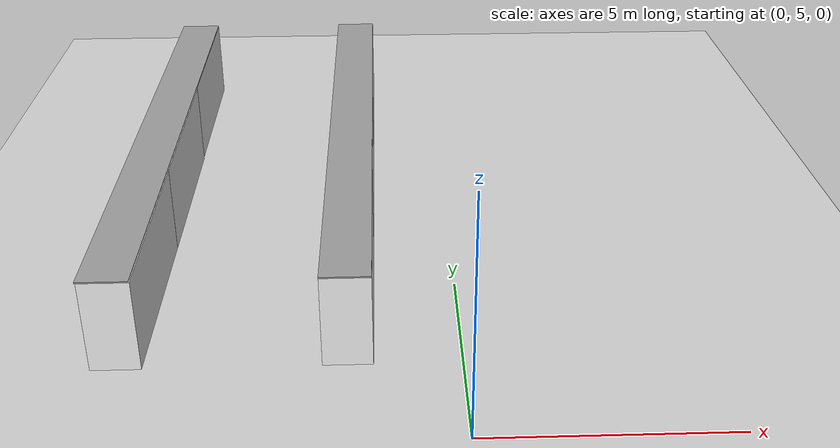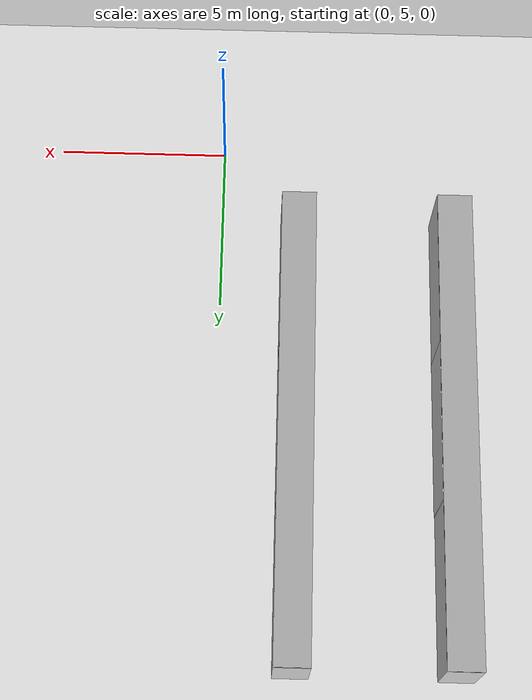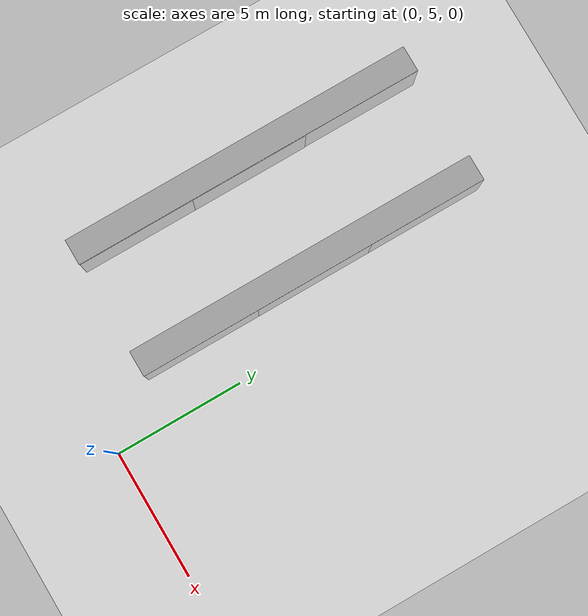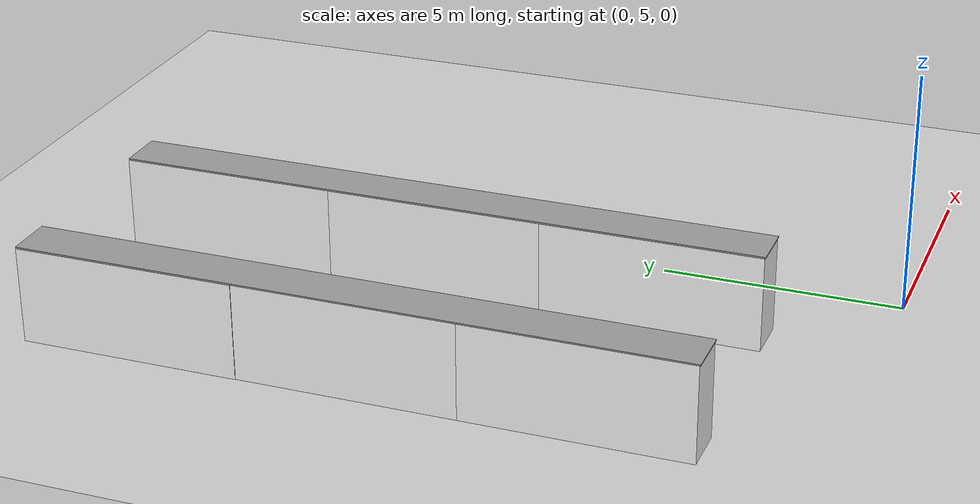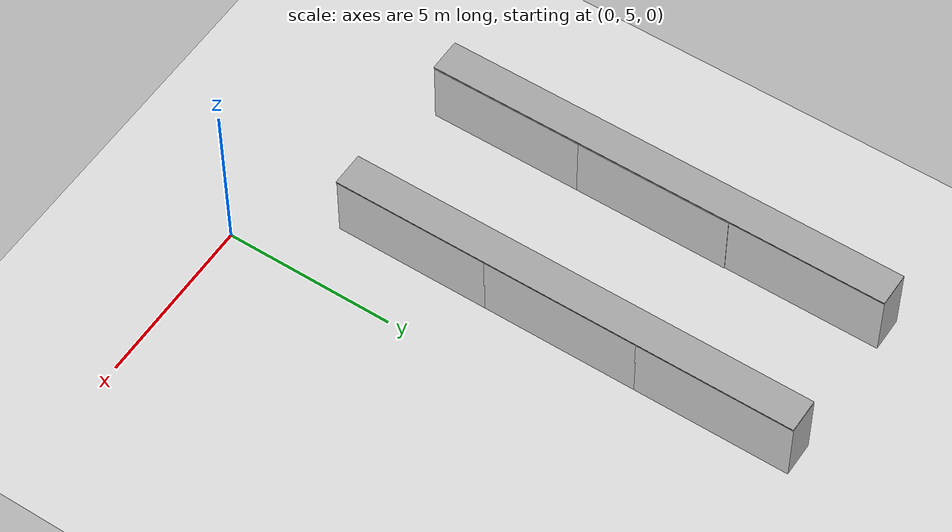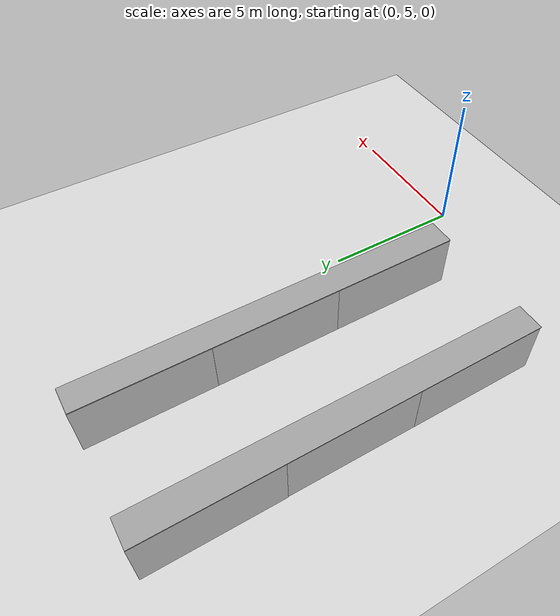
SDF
<sdf version="1.6">
 <world name="default">
  <model name="ground_plane">
   <static>1</static>
   <link name="link">
    <collision name="collision">
     <geometry><plane><normal>0 0 1</normal><size>100 100</size></plane></geometry>
     <surface><friction><ode><mu>100</mu><mu2>50</mu2></ode></friction></surface>
    </collision>
    <visual name="visual">
     <cast_shadows>0</cast_shadows>
     <geometry><plane><normal>0 0 1</normal><size>100 100</size></plane></geometry>
     <material>
      <script><uri>file://media/materials/scripts/gazebo.material</uri><name>Gazebo/Grey</name></script>
     </material>
    </visual>
   </link>
  </model>
  <model name="market_aisle_clone_03_clone">
   <link name="link_0">
    <inertial>
     <mass>45.3865</mass>
     <inertia><ixx>668.696</ixx><ixy>0</ixy><ixz>0</ixz><iyy>41.6273</iyy><iyz>0</iyz><izz>636.647</izz></inertia>
    </inertial>
    <visual name="visual">
     <material>
      <script>
       <uri>model://market_aisle/materials/scripts</uri>
       <uri>model://market_aisle/materials/textures</uri>
       <name>market_aisle/Picture</name>
      </script>
      <shader type="pixel"><normal_map>__default__</normal_map></shader>
      <ambient>1 1 1 1</ambient>
      <diffuse>1 1 1 1</diffuse>
      <specular>0 0 0 1</specular>
      <emissive>0 0 0 1</emissive>
     </material>
     <geometry><box><size>1 4.57035 2</size></box></geometry>
    </visual>
    <collision name="collision">
     <geometry><box><size>1 4.57035 2</size></box></geometry>
     <surface>
      <friction>
       <ode><mu>1</mu><mu2>1</mu2><fdir1>0 0 0</fdir1><slip1>0</slip1><slip2>0</slip2></ode>
       <torsional>
        <coefficient>1</coefficient>
        <patch_radius>0</patch_radius>
        <surface_radius>0</surface_radius>
        <use_patch_radius>1</use_patch_radius>
        <ode><slip>0</slip></ode>
       </torsional>
      </friction>
      <bounce><restitution_coefficient>0</restitution_coefficient><threshold>1e+06</threshold></bounce>
      <contact>
       <collide_without_contact>0</collide_without_contact>
       <collide_without_contact_bitmask>1</collide_without_contact_bitmask>
       <collide_bitmask>1</collide_bitmask>
       <ode>
        <soft_cfm>0</soft_cfm>
        <soft_erp>0.2</soft_erp>
        <kp>1e+13</kp>
        <kd>1</kd>
        <max_vel>0.01</max_vel>
        <min_depth>0</min_depth>
       </ode>
       <bullet>
        <split_impulse>1</split_impulse>
        <split_impulse_penetration_threshold>-0.01</split_impulse_penetration_threshold>
        <soft_cfm>0</soft_cfm>
        <soft_erp>0.2</soft_erp>
        <kp>1e+13</kp>
        <kd>1</kd>
       </bullet>
      </contact>
     </surface>
    </collision>
   </link>
   <static>1</static>
   <pose>-6.73625 9.51575 1 0 -0 0</pose>
  </model>
  <model name="market_aisle_clone_03_clone_0">
   <link name="link_0">
    <inertial>
     <mass>45.3865</mass>
     <inertia><ixx>668.696</ixx><ixy>0</ixy><ixz>0</ixz><iyy>41.6273</iyy><iyz>0</iyz><izz>636.647</izz></inertia>
    </inertial>
    <visual name="visual">
     <material>
      <script>
       <uri>model://market_aisle/materials/scripts</uri>
       <uri>model://market_aisle/materials/textures</uri>
       <name>market_aisle/Picture</name>
      </script>
      <shader type="pixel"><normal_map>__default__</normal_map></shader>
      <ambient>1 1 1 1</ambient>
      <diffuse>1 1 1 1</diffuse>
      <specular>0 0 0 1</specular>
      <emissive>0 0 0 1</emissive>
     </material>
     <geometry><box><size>1 4.57035 2</size></box></geometry>
    </visual>
    <collision name="collision">
     <geometry><box><size>1 4.57035 2</size></box></geometry>
     <surface>
      <friction>
       <ode><mu>1</mu><mu2>1</mu2><fdir1>0 0 0</fdir1><slip1>0</slip1><slip2>0</slip2></ode>
       <torsional>
        <coefficient>1</coefficient>
        <patch_radius>0</patch_radius>
        <surface_radius>0</surface_radius>
        <use_patch_radius>1</use_patch_radius>
        <ode><slip>0</slip></ode>
       </torsional>
      </friction>
      <bounce><restitution_coefficient>0</restitution_coefficient><threshold>1e+06</threshold></bounce>
      <contact>
       <collide_without_contact>0</collide_without_contact>
       <collide_without_contact_bitmask>1</collide_without_contact_bitmask>
       <collide_bitmask>1</collide_bitmask>
       <ode>
        <soft_cfm>0</soft_cfm>
        <soft_erp>0.2</soft_erp>
        <kp>1e+13</kp>
        <kd>1</kd>
        <max_vel>0.01</max_vel>
        <min_depth>0</min_depth>
       </ode>
       <bullet>
        <split_impulse>1</split_impulse>
        <split_impulse_penetration_threshold>-0.01</split_impulse_penetration_threshold>
        <soft_cfm>0</soft_cfm>
        <soft_erp>0.2</soft_erp>
        <kp>1e+13</kp>
        <kd>1</kd>
       </bullet>
      </contact>
     </surface>
    </collision>
   </link>
   <static>1</static>
   <pose>-6.73525 14.026 1 0 -0 0</pose>
  </model>
  <model name="market_aisle_clone_03_clone_1">
   <link name="link_0">
    <inertial>
     <mass>45.3865</mass>
     <inertia><ixx>668.696</ixx><ixy>0</ixy><ixz>0</ixz><iyy>41.6273</iyy><iyz>0</iyz><izz>636.647</izz></inertia>
    </inertial>
    <visual name="visual">
     <material>
      <script>
       <uri>model://market_aisle/materials/scripts</uri>
       <uri>model://market_aisle/materials/textures</uri>
       <name>market_aisle/Picture</name>
      </script>
      <shader type="pixel"><normal_map>__default__</normal_map></shader>
      <ambient>1 1 1 1</ambient>
      <diffuse>1 1 1 1</diffuse>
      <specular>0 0 0 1</specular>
      <emissive>0 0 0 1</emissive>
     </material>
     <geometry><box><size>1 4.57035 2</size></box></geometry>
    </visual>
    <collision name="collision">
     <geometry><box><size>1 4.57035 2</size></box></geometry>
     <surface>
      <friction>
       <ode><mu>1</mu><mu2>1</mu2><fdir1>0 0 0</fdir1><slip1>0</slip1><slip2>0</slip2></ode>
       <torsional>
        <coefficient>1</coefficient>
        <patch_radius>0</patch_radius>
        <surface_radius>0</surface_radius>
        <use_patch_radius>1</use_patch_radius>
        <ode><slip>0</slip></ode>
       </torsional>
      </friction>
      <bounce><restitution_coefficient>0</restitution_coefficient><threshold>1e+06</threshold></bounce>
      <contact>
       <collide_without_contact>0</collide_without_contact>
       <collide_without_contact_bitmask>1</collide_without_contact_bitmask>
       <collide_bitmask>1</collide_bitmask>
       <ode>
        <soft_cfm>0</soft_cfm>
        <soft_erp>0.2</soft_erp>
        <kp>1e+13</kp>
        <kd>1</kd>
        <max_vel>0.01</max_vel>
        <min_depth>0</min_depth>
       </ode>
       <bullet>
        <split_impulse>1</split_impulse>
        <split_impulse_penetration_threshold>-0.01</split_impulse_penetration_threshold>
        <soft_cfm>0</soft_cfm>
        <soft_erp>0.2</soft_erp>
        <kp>1e+13</kp>
        <kd>1</kd>
       </bullet>
      </contact>
     </surface>
    </collision>
   </link>
   <static>1</static>
   <pose>-6.75 18.5943 1 0 -0 0</pose>
  </model>
  <model name="market_aisle_clone_03_clone_clone">
   <link name="link_0">
    <inertial>
     <mass>45.3865</mass>
     <inertia><ixx>668.696</ixx><ixy>0</ixy><ixz>0</ixz><iyy>41.6273</iyy><iyz>0</iyz><izz>636.647</izz></inertia>
    </inertial>
    <visual name="visual">
     <material>
      <script>
       <uri>model://market_aisle/materials/scripts</uri>
       <uri>model://market_aisle/materials/textures</uri>
       <name>market_aisle/Picture</name>
      </script>
      <shader type="pixel"><normal_map>__default__</normal_map></shader>
      <ambient>1 1 1 1</ambient>
      <diffuse>1 1 1 1</diffuse>
      <specular>0 0 0 1</specular>
      <emissive>0 0 0 1</emissive>
     </material>
     <geometry><box><size>1 4.57035 2</size></box></geometry>
    </visual>
    <collision name="collision">
     <geometry><box><size>1 4.57035 2</size></box></geometry>
     <surface>
      <friction>
       <ode><mu>1</mu><mu2>1</mu2><fdir1>0 0 0</fdir1><slip1>0</slip1><slip2>0</slip2></ode>
       <torsional>
        <coefficient>1</coefficient>
        <patch_radius>0</patch_radius>
        <surface_radius>0</surface_radius>
        <use_patch_radius>1</use_patch_radius>
        <ode><slip>0</slip></ode>
       </torsional>
      </friction>
      <bounce><restitution_coefficient>0</restitution_coefficient><threshold>1e+06</threshold></bounce>
      <contact>
       <collide_without_contact>0</collide_without_contact>
       <collide_without_contact_bitmask>1</collide_without_contact_bitmask>
       <collide_bitmask>1</collide_bitmask>
       <ode>
        <soft_cfm>0</soft_cfm>
        <soft_erp>0.2</soft_erp>
        <kp>1e+13</kp>
        <kd>1</kd>
        <max_vel>0.01</max_vel>
        <min_depth>0</min_depth>
       </ode>
       <bullet>
        <split_impulse>1</split_impulse>
        <split_impulse_penetration_threshold>-0.01</split_impulse_penetration_threshold>
        <soft_cfm>0</soft_cfm>
        <soft_erp>0.2</soft_erp>
        <kp>1e+13</kp>
        <kd>1</kd>
       </bullet>
      </contact>
     </surface>
    </collision>
   </link>
   <static>1</static>
   <pose>-2.25 9.52213 1 0 -0 0</pose>
  </model>
  <model name="market_aisle_clone_03_clone_clone_0">
   <link name="link_0">
    <inertial>
     <mass>45.3865</mass>
     <inertia><ixx>668.696</ixx><ixy>0</ixy><ixz>0</ixz><iyy>41.6273</iyy><iyz>0</iyz><izz>636.647</izz></inertia>
    </inertial>
    <visual name="visual">
     <material>
      <script>
       <uri>model://market_aisle/materials/scripts</uri>
       <uri>model://market_aisle/materials/textures</uri>
       <name>market_aisle/Picture</name>
      </script>
      <shader type="pixel"><normal_map>__default__</normal_map></shader>
      <ambient>1 1 1 1</ambient>
      <diffuse>1 1 1 1</diffuse>
      <specular>0 0 0 1</specular>
      <emissive>0 0 0 1</emissive>
     </material>
     <geometry><box><size>1 4.57035 2</size></box></geometry>
    </visual>
    <collision name="collision">
     <geometry><box><size>1 4.57035 2</size></box></geometry>
     <surface>
      <friction>
       <ode><mu>1</mu><mu2>1</mu2><fdir1>0 0 0</fdir1><slip1>0</slip1><slip2>0</slip2></ode>
       <torsional>
        <coefficient>1</coefficient>
        <patch_radius>0</patch_radius>
        <surface_radius>0</surface_radius>
        <use_patch_radius>1</use_patch_radius>
        <ode><slip>0</slip></ode>
       </torsional>
      </friction>
      <bounce><restitution_coefficient>0</restitution_coefficient><threshold>1e+06</threshold></bounce>
      <contact>
       <collide_without_contact>0</collide_without_contact>
       <collide_without_contact_bitmask>1</collide_without_contact_bitmask>
       <collide_bitmask>1</collide_bitmask>
       <ode>
        <soft_cfm>0</soft_cfm>
        <soft_erp>0.2</soft_erp>
        <kp>1e+13</kp>
        <kd>1</kd>
        <max_vel>0.01</max_vel>
        <min_depth>0</min_depth>
       </ode>
       <bullet>
        <split_impulse>1</split_impulse>
        <split_impulse_penetration_threshold>-0.01</split_impulse_penetration_threshold>
        <soft_cfm>0</soft_cfm>
        <soft_erp>0.2</soft_erp>
        <kp>1e+13</kp>
        <kd>1</kd>
       </bullet>
      </contact>
     </surface>
    </collision>
   </link>
   <static>1</static>
   <pose>-2.25 14.0661 1 0 -0 0</pose>
  </model>
  <model name="market_aisle_clone_03_clone_clone_1">
   <link name="link_0">
    <inertial>
     <mass>45.3865</mass>
     <inertia><ixx>668.696</ixx><ixy>0</ixy><ixz>0</ixz><iyy>41.6273</iyy><iyz>0</iyz><izz>636.647</izz></inertia>
    </inertial>
    <visual name="visual">
     <material>
      <script>
       <uri>model://market_aisle/materials/scripts</uri>
       <uri>model://market_aisle/materials/textures</uri>
       <name>market_aisle/Picture</name>
      </script>
      <shader type="pixel"><normal_map>__default__</normal_map></shader>
      <ambient>1 1 1 1</ambient>
      <diffuse>1 1 1 1</diffuse>
      <specular>0 0 0 1</specular>
      <emissive>0 0 0 1</emissive>
     </material>
     <geometry><box><size>1 4.57035 2</size></box></geometry>
    </visual>
    <collision name="collision">
     <geometry><box><size>1 4.57035 2</size></box></geometry>
     <surface>
      <friction>
       <ode><mu>1</mu><mu2>1</mu2><fdir1>0 0 0</fdir1><slip1>0</slip1><slip2>0</slip2></ode>
       <torsional>
        <coefficient>1</coefficient>
        <patch_radius>0</patch_radius>
        <surface_radius>0</surface_radius>
        <use_patch_radius>1</use_patch_radius>
        <ode><slip>0</slip></ode>
       </torsional>
      </friction>
      <bounce><restitution_coefficient>0</restitution_coefficient><threshold>1e+06</threshold></bounce>
      <contact>
       <collide_without_contact>0</collide_without_contact>
       <collide_without_contact_bitmask>1</collide_without_contact_bitmask>
       <collide_bitmask>1</collide_bitmask>
       <ode>
        <soft_cfm>0</soft_cfm>
        <soft_erp>0.2</soft_erp>
        <kp>1e+13</kp>
        <kd>1</kd>
        <max_vel>0.01</max_vel>
        <min_depth>0</min_depth>
       </ode>
       <bullet>
        <split_impulse>1</split_impulse>
        <split_impulse_penetration_threshold>-0.01</split_impulse_penetration_threshold>
        <soft_cfm>0</soft_cfm>
        <soft_erp>0.2</soft_erp>
        <kp>1e+13</kp>
        <kd>1</kd>
       </bullet>
      </contact>
     </surface>
    </collision>
   </link>
   <static>1</static>
   <pose>-2.25 18.6113 1 0 -0 0</pose>
  </model>
  <model name="asile_top_clone">
   <link name="link_0">
    <pose>5e-06 0 -4e-06 0 -0 0</pose>
    <inertial>
     <mass>0.475296</mass>
     <inertia>
      <ixx>7.40524</ixx>
      <ixy>0</ixy>
      <ixz>0</ixz>
      <iyy>0.0496263</iyy>
      <iyz>0</iyz>
      <izz>7.45479</izz>
     </inertia>
    </inertial>
    <visual name="visual">
     <geometry><box><size>1 13.6734 0.031027</size></box></geometry>
     <material>
      <lighting>1</lighting>
      <script><uri>file://media/materials/scripts/gazebo.material</uri><name>Gazebo/Grey</name></script>
      <shader type="pixel"><normal_map>__default__</normal_map></shader>
      <ambient>0.3 0.3 0.3 1</ambient>
      <diffuse>0.7 0.7 0.7 1</diffuse>
      <specular>0.01 0.01 0.01 1</specular>
      <emissive>0 0 0 1</emissive>
     </material>
    </visual>
    <collision name="collision">
     <geometry><box><size>1 13.6734 0.031027</size></box></geometry>
     <surface>
      <friction>
       <ode><mu>1</mu><mu2>1</mu2><fdir1>0 0 0</fdir1><slip1>0</slip1><slip2>0</slip2></ode>
       <torsional>
        <coefficient>1</coefficient>
        <patch_radius>0</patch_radius>
        <surface_radius>0</surface_radius>
        <use_patch_radius>1</use_patch_radius>
        <ode><slip>0</slip></ode>
       </torsional>
      </friction>
      <bounce><restitution_coefficient>0</restitution_coefficient><threshold>1e+06</threshold></bounce>
      <contact>
       <collide_without_contact>0</collide_without_contact>
       <collide_without_contact_bitmask>1</collide_without_contact_bitmask>
       <collide_bitmask>1</collide_bitmask>
       <ode>
        <soft_cfm>0</soft_cfm>
        <soft_erp>0.2</soft_erp>
        <kp>1e+13</kp>
        <kd>1</kd>
        <max_vel>0.01</max_vel>
        <min_depth>0</min_depth>
       </ode>
       <bullet>
        <split_impulse>1</split_impulse>
        <split_impulse_penetration_threshold>-0.01</split_impulse_penetration_threshold>
        <soft_cfm>0</soft_cfm>
        <soft_erp>0.2</soft_erp>
        <kp>1e+13</kp>
        <kd>1</kd>
       </bullet>
      </contact>
     </surface>
    </collision>
   </link>
   <static>1</static>
   <pose>-2.25 14.0526 2.02165 0 -0 0</pose>
  </model>
  <model name="asile_top_clone_0">
   <link name="link_0">
    <pose>5e-06 0 -4e-06 0 -0 0</pose>
    <inertial>
     <mass>0.475296</mass>
     <inertia>
      <ixx>7.40524</ixx>
      <ixy>0</ixy>
      <ixz>0</ixz>
      <iyy>0.0496263</iyy>
      <iyz>0</iyz>
      <izz>7.45479</izz>
     </inertia>
    </inertial>
    <visual name="visual">
     <geometry><box><size>1 13.6734 0.031027</size></box></geometry>
     <material>
      <lighting>1</lighting>
      <script><uri>file://media/materials/scripts/gazebo.material</uri><name>Gazebo/Grey</name></script>
      <shader type="pixel"><normal_map>__default__</normal_map></shader>
      <ambient>0.3 0.3 0.3 1</ambient>
      <diffuse>0.7 0.7 0.7 1</diffuse>
      <specular>0.01 0.01 0.01 1</specular>
      <emissive>0 0 0 1</emissive>
     </material>
    </visual>
    <collision name="collision">
     <geometry><box><size>1 13.6734 0.031027</size></box></geometry>
     <surface>
      <friction>
       <ode><mu>1</mu><mu2>1</mu2><fdir1>0 0 0</fdir1><slip1>0</slip1><slip2>0</slip2></ode>
       <torsional>
        <coefficient>1</coefficient>
        <patch_radius>0</patch_radius>
        <surface_radius>0</surface_radius>
        <use_patch_radius>1</use_patch_radius>
        <ode><slip>0</slip></ode>
       </torsional>
      </friction>
      <bounce><restitution_coefficient>0</restitution_coefficient><threshold>1e+06</threshold></bounce>
      <contact>
       <collide_without_contact>0</collide_without_contact>
       <collide_without_contact_bitmask>1</collide_without_contact_bitmask>
       <collide_bitmask>1</collide_bitmask>
       <ode>
        <soft_cfm>0</soft_cfm>
        <soft_erp>0.2</soft_erp>
        <kp>1e+13</kp>
        <kd>1</kd>
        <max_vel>0.01</max_vel>
        <min_depth>0</min_depth>
       </ode>
       <bullet>
        <split_impulse>1</split_impulse>
        <split_impulse_penetration_threshold>-0.01</split_impulse_penetration_threshold>
        <soft_cfm>0</soft_cfm>
        <soft_erp>0.2</soft_erp>
        <kp>1e+13</kp>
        <kd>1</kd>
       </bullet>
      </contact>
     </surface>
    </collision>
   </link>
   <static>1</static>
   <pose>-6.75 14.0408 2.02165 0 -0 0</pose>
  </model>
 </world>
</sdf>
